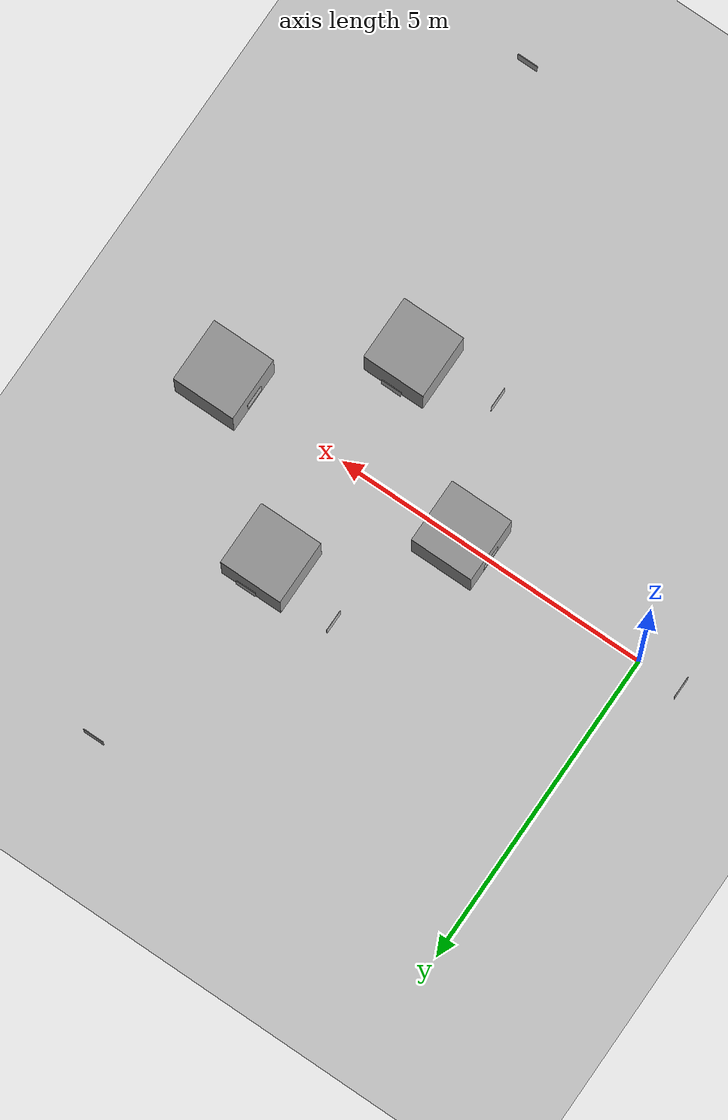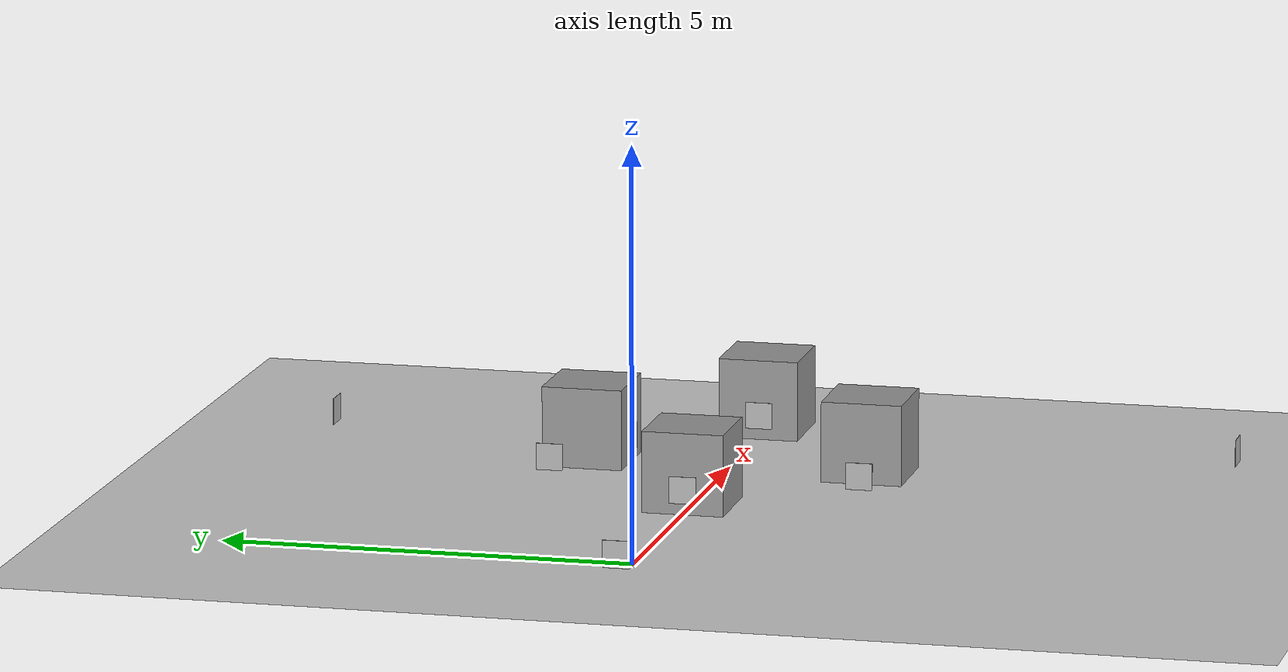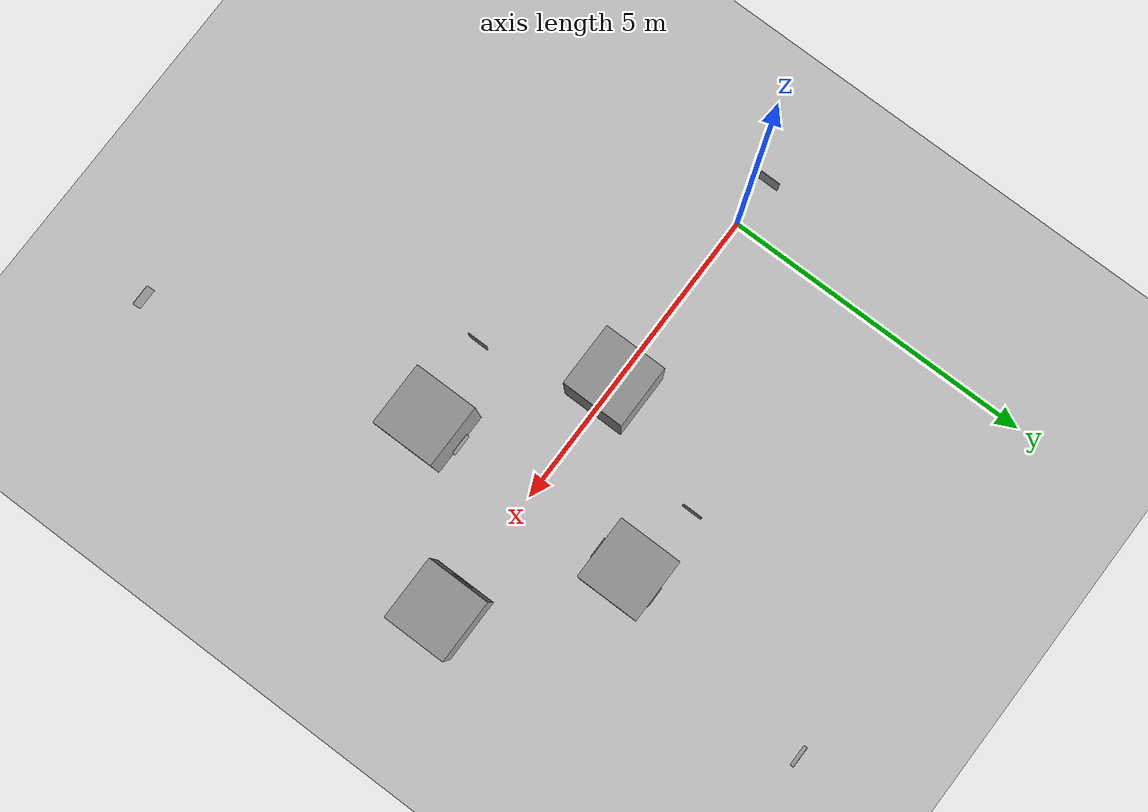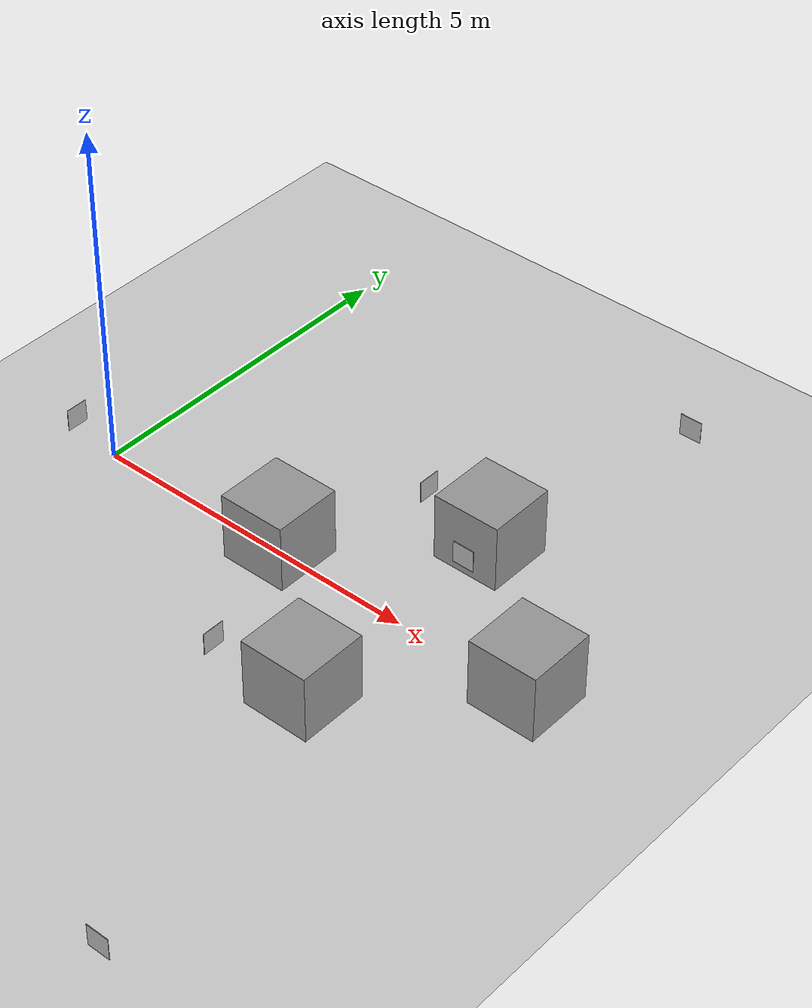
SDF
<sdf version="1.6">
 <world name="default">
  <light name="sun" type="directional">
   <pose>0 0 10 0 -0 0</pose>
   <diffuse>0.8 0.8 0.8 1</diffuse>
   <specular>0.2 0.2 0.2 1</specular>
   <attenuation>
    <range>1000</range>
    <constant>0.9</constant>
    <linear>0.01</linear>
    <quadratic>0.001</quadratic>
   </attenuation>
   <direction>-0.5 0.1 -0.9</direction>
  </light>
  <model name="ground_plane">
   <static>1</static>
   <link name="link">
    <collision name="collision">
     <geometry><plane><normal>0 0 1</normal><size>100 100</size></plane></geometry>
     <surface><friction><ode><mu>100</mu><mu2>50</mu2></ode></friction></surface>
    </collision>
    <visual name="visual">
     <cast_shadows>0</cast_shadows>
     <geometry><plane><normal>0 0 1</normal><size>100 100</size></plane></geometry>
     <material>
      <script><uri>file://media/materials/scripts/gazebo.material</uri><name>Gazebo/Grey</name></script>
     </material>
    </visual>
   </link>
  </model>
  <gravity>0 0 -9.8</gravity>
  <magnetic_field>6e-06 2.3e-05 -4.2e-05</magnetic_field>
  <atmosphere type="adiabatic"/>
  <physics name="default_physics" default="0" type="ode">
   <max_step_size>0.001</max_step_size>
   <real_time_factor>1</real_time_factor>
   <real_time_update_rate>1000</real_time_update_rate>
  </physics>
  <scene><ambient>0.4 0.4 0.4 1</ambient><background>0.7 0.7 0.7 1</background><shadows>1</shadows></scene>
  <audio><device>default</device></audio>
  <spherical_coordinates>
   <surface_model>EARTH_WGS84</surface_model>
   <latitude_deg>0</latitude_deg>
   <longitude_deg>0</longitude_deg>
   <elevation>0</elevation>
   <heading_deg>0</heading_deg>
  </spherical_coordinates>
  <model name="unit_box">
   <pose>3 -8e-06 0.499995 -1e-05 -0 5e-06</pose>
   <link name="link">
    <inertial>
     <mass>1</mass>
     <inertia>
      <ixx>0.166667</ixx>
      <ixy>0</ixy>
      <ixz>0</ixz>
      <iyy>0.166667</iyy>
      <iyz>0</iyz>
      <izz>0.166667</izz>
     </inertia>
    </inertial>
    <collision name="collision"><geometry><box><size>1 1 1</size></box></geometry></collision>
    <visual name="visual">
     <geometry><box><size>1 1 1</size></box></geometry>
     <material>
      <script><name>Gazebo/Grey</name><uri>file://media/materials/scripts/gazebo.material</uri></script>
     </material>
    </visual>
   </link>
  </model>
  <model name="unit_box_0">
   <pose>5 1.74999 0.499995 -1e-05 -0 6e-06</pose>
   <link name="link">
    <inertial>
     <mass>1</mass>
     <inertia>
      <ixx>0.166667</ixx>
      <ixy>0</ixy>
      <ixz>0</ixz>
      <iyy>0.166667</iyy>
      <iyz>0</iyz>
      <izz>0.166667</izz>
     </inertia>
    </inertial>
    <collision name="collision"><geometry><box><size>1 1 1</size></box></geometry></collision>
    <visual name="visual">
     <geometry><box><size>1 1 1</size></box></geometry>
     <material>
      <script><name>Gazebo/Grey</name><uri>file://media/materials/scripts/gazebo.material</uri></script>
     </material>
    </visual>
   </link>
  </model>
  <model name="unit_box_1">
   <pose>7 -8e-06 0.499995 -1e-05 -0 5e-06</pose>
   <link name="link">
    <inertial>
     <mass>1</mass>
     <inertia>
      <ixx>0.166667</ixx>
      <ixy>0</ixy>
      <ixz>0</ixz>
      <iyy>0.166667</iyy>
      <iyz>0</iyz>
      <izz>0.166667</izz>
     </inertia>
    </inertial>
    <collision name="collision"><geometry><box><size>1 1 1</size></box></geometry></collision>
    <visual name="visual">
     <geometry><box><size>1 1 1</size></box></geometry>
     <material>
      <script><name>Gazebo/Grey</name><uri>file://media/materials/scripts/gazebo.material</uri></script>
     </material>
    </visual>
   </link>
  </model>
  <model name="unit_box_0_clone">
   <pose>4.99999 -1.75002 0.499995 -1e-05 -0 -0</pose>
   <link name="link">
    <inertial>
     <mass>1</mass>
     <inertia>
      <ixx>0.166667</ixx>
      <ixy>0</ixy>
      <ixz>0</ixz>
      <iyy>0.166667</iyy>
      <iyz>0</iyz>
      <izz>0.166667</izz>
     </inertia>
    </inertial>
    <collision name="collision"><geometry><box><size>1 1 1</size></box></geometry></collision>
    <visual name="visual">
     <geometry><box><size>1 1 1</size></box></geometry>
     <material>
      <script><name>Gazebo/Grey</name><uri>file://media/materials/scripts/gazebo.material</uri></script>
     </material>
    </visual>
   </link>
  </model>
  <model name="Aruco tag0">
   <static>1</static>
   <link name="robot_link">
    <visual name="front_visual">
     <geometry><box><size>0.33 0.33 0.005</size></box></geometry>
     <material>
      <script>
       <uri>file://tag_0/materials/scripts/</uri>
       <uri>file://tag_0/materials/textures/</uri>
       <name>Aruco/tag0</name>
      </script>
     </material>
    </visual>
    <visual name="rear_visual">
     <pose>0 0 -0.0025 0 -0 -3.14159</pose>
     <geometry><box><size>0.33 0.33 0.005</size></box></geometry>
     <material>
      <script>
       <uri>file://tag_0/materials/scripts/</uri>
       <uri>file://tag_0/materials/textures/</uri>
       <name>Aruco/tag0</name>
      </script>
     </material>
    </visual>
   </link>
   <pose>3.79402 1.97759 0.3 0 -1.57 0</pose>
  </model>
  <model name="Aruco tag1">
   <static>1</static>
   <link name="robot_link">
    <visual name="front_visual">
     <geometry><box><size>0.33 0.33 0.005</size></box></geometry>
     <material>
      <script>
       <uri>file://tag_1/materials/scripts/</uri>
       <uri>file://tag_1/materials/textures/</uri>
       <name>Aruco/tag1</name>
      </script>
     </material>
    </visual>
    <visual name="rear_visual">
     <pose>0 0 -0.0025 0 -0 -3.14159</pose>
     <geometry><box><size>0.33 0.33 0.005</size></box></geometry>
     <material>
      <script>
       <uri>file://tag_1/materials/scripts/</uri>
       <uri>file://tag_1/materials/textures/</uri>
       <name>Aruco/tag1</name>
      </script>
     </material>
    </visual>
   </link>
   <pose>3.67781 -1.90218 0.3 0 -1.57 0</pose>
  </model>
  <model name="Aruco tag2">
   <static>1</static>
   <link name="robot_link">
    <visual name="front_visual">
     <geometry><box><size>0.33 0.33 0.005</size></box></geometry>
     <material>
      <script>
       <uri>file://tag_2/materials/scripts/</uri>
       <uri>file://tag_2/materials/textures/</uri>
       <name>Aruco/tag2</name>
      </script>
     </material>
    </visual>
    <visual name="rear_visual">
     <pose>0 0 -0.0025 0 -0 -3.14159</pose>
     <geometry><box><size>0.33 0.33 0.005</size></box></geometry>
     <material>
      <script>
       <uri>file://tag_2/materials/scripts/</uri>
       <uri>file://tag_2/materials/textures/</uri>
       <name>Aruco/tag2</name>
      </script>
     </material>
    </visual>
   </link>
   <pose>5.0708 2.27722 0.299999 -1.5587 -1.57 4.6e-05</pose>
  </model>
  <model name="Aruco tag3">
   <static>1</static>
   <link name="robot_link">
    <visual name="front_visual">
     <geometry><box><size>0.33 0.33 0.005</size></box></geometry>
     <material>
      <script>
       <uri>file://tag_3/materials/scripts/</uri>
       <uri>file://tag_3/materials/textures/</uri>
       <name>Aruco/tag3</name>
      </script>
     </material>
    </visual>
    <visual name="rear_visual">
     <pose>0 0 -0.0025 0 -0 -3.14159</pose>
     <geometry><box><size>0.33 0.33 0.005</size></box></geometry>
     <material>
      <script>
       <uri>file://tag_3/materials/scripts/</uri>
       <uri>file://tag_3/materials/textures/</uri>
       <name>Aruco/tag3</name>
      </script>
     </material>
    </visual>
   </link>
   <pose>4.9983 1.22035 0.299999 1.56557 -1.57 9.1e-05</pose>
  </model>
  <model name="Aruco tag4">
   <static>1</static>
   <link name="robot_link">
    <visual name="front_visual">
     <geometry><box><size>0.33 0.33 0.005</size></box></geometry>
     <material>
      <script>
       <uri>file://tag_4/materials/scripts/</uri>
       <uri>file://tag_4/materials/textures/</uri>
       <name>Aruco/tag4</name>
      </script>
     </material>
    </visual>
    <visual name="rear_visual">
     <pose>0 0 -0.0025 0 -0 -3.14159</pose>
     <geometry><box><size>0.33 0.33 0.005</size></box></geometry>
     <material>
      <script>
       <uri>file://tag_4/materials/scripts/</uri>
       <uri>file://tag_4/materials/textures/</uri>
       <name>Aruco/tag4</name>
      </script>
     </material>
    </visual>
   </link>
   <pose>6.49776 -0.00974 0.3 0 -1.57 0</pose>
  </model>
  <model name="Aruco tag5">
   <static>1</static>
   <link name="robot_link">
    <visual name="front_visual">
     <geometry><box><size>0.33 0.33 0.005</size></box></geometry>
     <material>
      <script>
       <uri>file://tag_5/materials/scripts/</uri>
       <uri>file://tag_5/materials/textures/</uri>
       <name>Aruco/tag5</name>
      </script>
     </material>
    </visual>
    <visual name="rear_visual">
     <pose>0 0 -0.0025 0 -0 -3.14159</pose>
     <geometry><box><size>0.33 0.33 0.005</size></box></geometry>
     <material>
      <script>
       <uri>file://tag_5/materials/scripts/</uri>
       <uri>file://tag_5/materials/textures/</uri>
       <name>Aruco/tag5</name>
      </script>
     </material>
    </visual>
   </link>
   <pose>5.62885 5.18176 0.3 -1.5704 -0 0.000399</pose>
  </model>
  <model name="Aruco tag6">
   <static>1</static>
   <link name="robot_link">
    <visual name="front_visual">
     <geometry><box><size>0.33 0.33 0.005</size></box></geometry>
     <material>
      <script>
       <uri>file://tag_6/materials/scripts/</uri>
       <uri>file://tag_6/materials/textures/</uri>
       <name>Aruco/tag6</name>
      </script>
     </material>
    </visual>
    <visual name="rear_visual">
     <pose>0 0 -0.0025 0 -0 -3.14159</pose>
     <geometry><box><size>0.33 0.33 0.005</size></box></geometry>
     <material>
      <script>
       <uri>file://tag_6/materials/scripts/</uri>
       <uri>file://tag_6/materials/textures/</uri>
       <name>Aruco/tag6</name>
      </script>
     </material>
    </visual>
   </link>
   <pose>5 -1.2 0.3 -1.57 0 0</pose>
  </model>
  <model name="Aruco tag7">
   <static>1</static>
   <link name="robot_link">
    <visual name="front_visual">
     <geometry><box><size>0.33 0.33 0.005</size></box></geometry>
     <material>
      <script>
       <uri>file://tag_7/materials/scripts/</uri>
       <uri>file://tag_7/materials/textures/</uri>
       <name>Aruco/tag7</name>
      </script>
     </material>
    </visual>
    <visual name="rear_visual">
     <pose>0 0 -0.0025 0 -0 -3.14159</pose>
     <geometry><box><size>0.33 0.33 0.005</size></box></geometry>
     <material>
      <script>
       <uri>file://tag_7/materials/scripts/</uri>
       <uri>file://tag_7/materials/textures/</uri>
       <name>Aruco/tag7</name>
      </script>
     </material>
    </visual>
   </link>
   <pose>-0.706953 0.017781 0.3 0 -1.57 0</pose>
  </model>
  <model name="Aruco tag8">
   <static>1</static>
   <link name="robot_link">
    <visual name="front_visual">
     <geometry><box><size>0.33 0.33 0.005</size></box></geometry>
     <material>
      <script>
       <uri>file://tag_8/materials/scripts/</uri>
       <uri>file://tag_8/materials/textures/</uri>
       <name>Aruco/tag8</name>
      </script>
     </material>
    </visual>
    <visual name="rear_visual">
     <pose>0 0 -0.0025 0 -0 -3.14159</pose>
     <geometry><box><size>0.33 0.33 0.005</size></box></geometry>
     <material>
      <script>
       <uri>file://tag_8/materials/scripts/</uri>
       <uri>file://tag_8/materials/textures/</uri>
       <name>Aruco/tag8</name>
      </script>
     </material>
    </visual>
   </link>
   <pose>2.5 0 0.3 0 -1.57 0</pose>
  </model>
  <model name="Aruco tag9">
   <static>1</static>
   <link name="robot_link">
    <visual name="front_visual">
     <geometry><box><size>0.33 0.33 0.005</size></box></geometry>
     <material>
      <script>
       <uri>file://tag_9/materials/scripts/</uri>
       <uri>file://tag_9/materials/textures/</uri>
       <name>Aruco/tag9</name>
      </script>
     </material>
    </visual>
    <visual name="rear_visual">
     <pose>0 0 -0.0025 0 -0 -3.14159</pose>
     <geometry><box><size>0.33 0.33 0.005</size></box></geometry>
     <material>
      <script>
       <uri>file://tag_9/materials/scripts/</uri>
       <uri>file://tag_9/materials/textures/</uri>
       <name>Aruco/tag9</name>
      </script>
     </material>
    </visual>
   </link>
   <pose>5 2 0.3 -1.57 -1.57 0</pose>
  </model>
  <model name="Aruco tag10">
   <static>1</static>
   <link name="robot_link">
    <visual name="front_visual">
     <geometry><box><size>0.33 0.33 0.005</size></box></geometry>
     <material>
      <script>
       <uri>file://tag_10/materials/scripts/</uri>
       <uri>file://tag_10/materials/textures/</uri>
       <name>Aruco/tag10</name>
      </script>
     </material>
    </visual>
    <visual name="rear_visual">
     <pose>0 0 -0.0025 0 -0 -3.14159</pose>
     <geometry><box><size>0.33 0.33 0.005</size></box></geometry>
     <material>
      <script>
       <uri>file://tag_10/materials/scripts/</uri>
       <uri>file://tag_10/materials/textures/</uri>
       <name>Aruco/tag10</name>
      </script>
     </material>
    </visual>
   </link>
   <pose>6.04246 -6.11304 0.3 -1.57 -1.57 0</pose>
  </model>
 </world>
</sdf>
